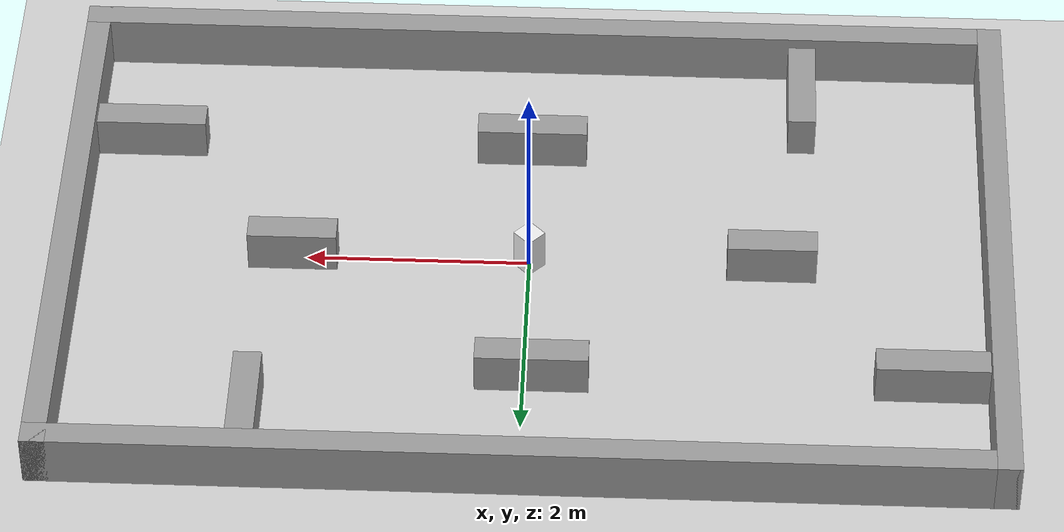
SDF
<sdf version="1.6">
 <world name="default">
  <light name="sun" type="directional">
   <pose>0 0 10 0 -0 0</pose>
   <diffuse>0.8 0.8 0.8 1</diffuse>
   <specular>0.2 0.2 0.2 1</specular>
   <attenuation>
    <range>1000</range>
    <constant>0.9</constant>
    <linear>0.01</linear>
    <quadratic>0.001</quadratic>
   </attenuation>
   <direction>-0.5 0.1 -0.9</direction>
  </light>
  <model name="ground_plane">
   <static>1</static>
   <link name="link">
    <collision name="collision">
     <geometry><plane><normal>0 0 1</normal><size>100 100</size></plane></geometry>
     <surface><friction><ode><mu>100</mu><mu2>50</mu2></ode></friction></surface>
    </collision>
    <visual name="visual">
     <cast_shadows>0</cast_shadows>
     <geometry><plane><normal>0 0 1</normal><size>100 100</size></plane></geometry>
     <material>
      <script><uri>file://media/materials/scripts/gazebo.material</uri><name>Gazebo/Grey</name></script>
     </material>
    </visual>
   </link>
  </model>
  <gravity>0 0 -9.8</gravity>
  <magnetic_field>6e-06 2.3e-05 -4.2e-05</magnetic_field>
  <atmosphere type="adiabatic"/>
  <physics name="default_physics" default="0" type="ode">
   <max_step_size>0.001</max_step_size>
   <real_time_factor>1</real_time_factor>
   <real_time_update_rate>1000</real_time_update_rate>
  </physics>
  <scene><ambient>0.4 0.4 0.4 1</ambient><background>0.7 0.7 0.7 1</background><shadows>1</shadows></scene>
  <audio><device>default</device></audio>
  <spherical_coordinates>
   <surface_model>EARTH_WGS84</surface_model>
   <latitude_deg>0</latitude_deg>
   <longitude_deg>0</longitude_deg>
   <elevation>0</elevation>
   <heading_deg>0</heading_deg>
  </spherical_coordinates>
  <model name="icra">
   <pose>-0.027035 0.015496 0 0 -0 0</pose>
   <link name="Wall_0">
    <collision name="Wall_0_Collision">
     <geometry><box><size>5.54 0.22 0.5</size></box></geometry>
     <pose>0 0 0.25 0 -0 0</pose>
    </collision>
    <visual name="Wall_0_Visual">
     <pose>0 0 0.25 0 -0 0</pose>
     <geometry><box><size>5.54 0.22 0.5</size></box></geometry>
     <material>
      <script><uri>file://media/materials/scripts/gazebo.material</uri><name>Gazebo/Grey</name></script>
      <ambient>1 1 1 1</ambient>
     </material>
     <meta><layer>0</layer></meta>
    </visual>
    <pose>4.16 0 0 0 -0 1.5708</pose>
   </link>
   <link name="Wall_11">
    <collision name="Wall_11_Collision">
     <geometry><box><size>0.8 0.25 0.4</size></box></geometry>
     <pose>0 0 0.2 0 -0 0</pose>
    </collision>
    <visual name="Wall_11_Visual">
     <pose>0 0 0.2 0 -0 0</pose>
     <geometry><box><size>0.8 0.25 0.4</size></box></geometry>
     <material>
      <script><uri>file://media/materials/scripts/gazebo.material</uri><name>Gazebo/Grey</name></script>
      <ambient>1 1 1 1</ambient>
     </material>
     <meta><layer>0</layer></meta>
    </visual>
    <pose>2.15 0 0 0 -0 3.14159</pose>
   </link>
   <link name="Wall_13">
    <collision name="Wall_13_Collision">
     <geometry><box><size>0.8 0.25 0.4</size></box></geometry>
     <pose>0 0 0.2 0 -0 0</pose>
    </collision>
    <visual name="Wall_13_Visual">
     <pose>0 0 0.2 0 -0 0</pose>
     <geometry><box><size>0.8 0.25 0.4</size></box></geometry>
     <material>
      <script><uri>file://media/materials/scripts/gazebo.material</uri><name>Gazebo/Grey</name></script>
      <ambient>1 1 1 1</ambient>
     </material>
     <meta><layer>0</layer></meta>
    </visual>
    <pose>-2.15 0 0 0 -0 0</pose>
   </link>
   <link name="Wall_15">
    <collision name="Wall_15_Collision">
     <geometry><box><size>1 0.25 0.4</size></box></geometry>
     <pose>0 0 0.2 0 -0 0</pose>
    </collision>
    <visual name="Wall_15_Visual">
     <pose>0 0 0.2 0 -0 0</pose>
     <geometry><box><size>1 0.25 0.4</size></box></geometry>
     <material>
      <script><uri>file://media/materials/scripts/gazebo.material</uri><name>Gazebo/Grey</name></script>
      <ambient>1 1 1 1</ambient>
     </material>
     <meta><layer>0</layer></meta>
    </visual>
    <pose>-0.05 1.425 0 0 -0 3.14159</pose>
   </link>
   <link name="Wall_17">
    <collision name="Wall_17_Collision">
     <geometry><box><size>1 0.25 0.4</size></box></geometry>
     <pose>0 0 0.2 0 -0 0</pose>
    </collision>
    <visual name="Wall_17_Visual">
     <pose>0 0 0.2 0 -0 0</pose>
     <geometry><box><size>1 0.25 0.4</size></box></geometry>
     <material>
      <script><uri>file://media/materials/scripts/gazebo.material</uri><name>Gazebo/Grey</name></script>
      <ambient>1 1 1 1</ambient>
     </material>
     <meta><layer>0</layer></meta>
    </visual>
    <pose>0.05 -1.425 0 0 -0 0</pose>
   </link>
   <link name="Wall_19">
    <collision name="Wall_19_Collision">
     <geometry><box><size>1 0.25 0.4</size></box></geometry>
     <pose>0 0 0.2 0 -0 0</pose>
    </collision>
    <visual name="Wall_19_Visual">
     <pose>0 0 0.2 0 -0 0</pose>
     <geometry><box><size>1 0.25 0.4</size></box></geometry>
     <material>
      <script><uri>file://media/materials/scripts/gazebo.material</uri><name>Gazebo/Grey</name></script>
      <ambient>1 1 1 1</ambient>
     </material>
     <meta><layer>0</layer></meta>
    </visual>
    <pose>-3.55 1.425 0 0 -0 0</pose>
   </link>
   <link name="Wall_2">
    <collision name="Wall_2_Collision">
     <geometry><box><size>8.54 0.22 0.5</size></box></geometry>
     <pose>0 0 0.25 0 -0 0</pose>
    </collision>
    <visual name="Wall_2_Visual">
     <pose>0 0 0.25 0 -0 0</pose>
     <geometry><box><size>8.54 0.22 0.5</size></box></geometry>
     <material>
      <script><uri>file://media/materials/scripts/gazebo.material</uri><name>Gazebo/Grey</name></script>
      <ambient>1 1 1 1</ambient>
     </material>
     <meta><layer>0</layer></meta>
    </visual>
    <pose>0 -2.66 0 0 -0 3.14159</pose>
   </link>
   <link name="Wall_21">
    <collision name="Wall_21_Collision">
     <geometry><box><size>1 0.25 0.4</size></box></geometry>
     <pose>0 0 0.2 0 -0 0</pose>
    </collision>
    <visual name="Wall_21_Visual">
     <pose>0 0 0.2 0 -0 0</pose>
     <geometry><box><size>1 0.25 0.4</size></box></geometry>
     <material>
      <script><uri>file://media/materials/scripts/gazebo.material</uri><name>Gazebo/Grey</name></script>
      <ambient>1 1 1 1</ambient>
     </material>
     <meta><layer>0</layer></meta>
    </visual>
    <pose>3.55 -1.425 0 0 -0 3.14159</pose>
   </link>
   <link name="Wall_3">
    <collision name="Wall_3_Collision">
     <geometry><box><size>5.54 0.22 0.5</size></box></geometry>
     <pose>0 0 0.25 0 -0 0</pose>
    </collision>
    <visual name="Wall_3_Visual">
     <pose>0 0 0.25 0 -0 0</pose>
     <geometry><box><size>5.54 0.22 0.5</size></box></geometry>
     <material>
      <script><uri>file://media/materials/scripts/gazebo.material</uri><name>Gazebo/Grey</name></script>
      <ambient>1 1 1 1</ambient>
     </material>
     <meta><layer>0</layer></meta>
    </visual>
    <pose>-4.16 0 0 0 -0 1.5708</pose>
   </link>
   <link name="Wall_4">
    <collision name="Wall_4_Collision">
     <geometry><box><size>8.54 0.22 0.5</size></box></geometry>
     <pose>0 0 0.25 0 -0 0</pose>
    </collision>
    <visual name="Wall_4_Visual">
     <pose>0 0 0.25 0 -0 0</pose>
     <geometry><box><size>8.54 0.22 0.5</size></box></geometry>
     <material>
      <script><uri>file://media/materials/scripts/gazebo.material</uri><name>Gazebo/Grey</name></script>
      <ambient>1 1 1 1</ambient>
     </material>
     <meta><layer>0</layer></meta>
    </visual>
    <pose>0 2.66 0 0 -0 0</pose>
   </link>
   <link name="Wall_6">
    <collision name="Wall_6_Collision">
     <geometry><box><size>1 0.25 0.4</size></box></geometry>
     <pose>0 0 0.2 0 -0 0</pose>
    </collision>
    <visual name="Wall_6_Visual">
     <pose>0 0 0.2 0 -0 0</pose>
     <geometry><box><size>1 0.25 0.4</size></box></geometry>
     <material>
      <script><uri>file://media/materials/scripts/gazebo.material</uri><name>Gazebo/Grey</name></script>
      <ambient>1 1 1 1</ambient>
     </material>
     <meta><layer>0</layer></meta>
    </visual>
    <pose>2.42 2.05 0 0 -0 -1.5708</pose>
   </link>
   <link name="Wall_9">
    <collision name="Wall_9_Collision">
     <geometry><box><size>1 0.25 0.4</size></box></geometry>
     <pose>0 0 0.2 0 -0 0</pose>
    </collision>
    <visual name="Wall_9_Visual">
     <pose>0 0 0.2 0 -0 0</pose>
     <geometry><box><size>1 0.25 0.4</size></box></geometry>
     <material>
      <script><uri>file://media/materials/scripts/gazebo.material</uri><name>Gazebo/Grey</name></script>
      <ambient>1 1 1 1</ambient>
     </material>
     <meta><layer>0</layer></meta>
    </visual>
    <pose>-2.42 -2.05 0 0 -0 1.5708</pose>
   </link>
   <static>1</static>
  </model>
  <model name="unit_box">
   <link name="link">
    <inertial>
     <mass>1</mass>
     <inertia>
      <ixx>0.166667</ixx>
      <ixy>0</ixy>
      <ixz>0</ixz>
      <iyy>0.166667</iyy>
      <iyz>0</iyz>
      <izz>0.166667</izz>
     </inertia>
    </inertial>
    <pose>0.006769 -0.006341 0 0 -0 0.036074</pose>
    <visual name="visual">
     <geometry><box><size>0.2 0.2 0.4</size></box></geometry>
     <material>
      <script><name>Gazebo/White</name><uri>file://media/materials/scripts/gazebo.material</uri></script>
      <shader type="vertex"><normal_map>__default__</normal_map></shader>
      <ambient>0.3 0.3 0.3 1</ambient>
      <diffuse>0.7 0.7 0.7 1</diffuse>
      <specular>0.01 0.01 0.01 1</specular>
      <emissive>0 0 0 1</emissive>
     </material>
    </visual>
    <collision name="collision">
     <geometry><box><size>0.2 0.2 0.4</size></box></geometry>
     <surface>
      <friction>
       <ode><mu>1</mu><mu2>1</mu2><fdir1>0 0 0</fdir1><slip1>0</slip1><slip2>0</slip2></ode>
       <torsional>
        <coefficient>1</coefficient>
        <patch_radius>0</patch_radius>
        <surface_radius>0</surface_radius>
        <use_patch_radius>1</use_patch_radius>
        <ode><slip>0</slip></ode>
       </torsional>
      </friction>
      <bounce><restitution_coefficient>0</restitution_coefficient><threshold>1e+06</threshold></bounce>
      <contact>
       <collide_without_contact>0</collide_without_contact>
       <collide_without_contact_bitmask>1</collide_without_contact_bitmask>
       <collide_bitmask>1</collide_bitmask>
       <ode>
        <soft_cfm>0</soft_cfm>
        <soft_erp>0.2</soft_erp>
        <kp>1e+13</kp>
        <kd>1</kd>
        <max_vel>0.01</max_vel>
        <min_depth>0</min_depth>
       </ode>
       <bullet>
        <split_impulse>1</split_impulse>
        <split_impulse_penetration_threshold>-0.01</split_impulse_penetration_threshold>
        <soft_cfm>0</soft_cfm>
        <soft_erp>0.2</soft_erp>
        <kp>1e+13</kp>
        <kd>1</kd>
       </bullet>
      </contact>
     </surface>
    </collision>
   </link>
   <static>0</static>
   <pose>-0.010621 0.004372 0.2 1e-06 3e-06 0.750184</pose>
  </model>
 </world>
</sdf>
